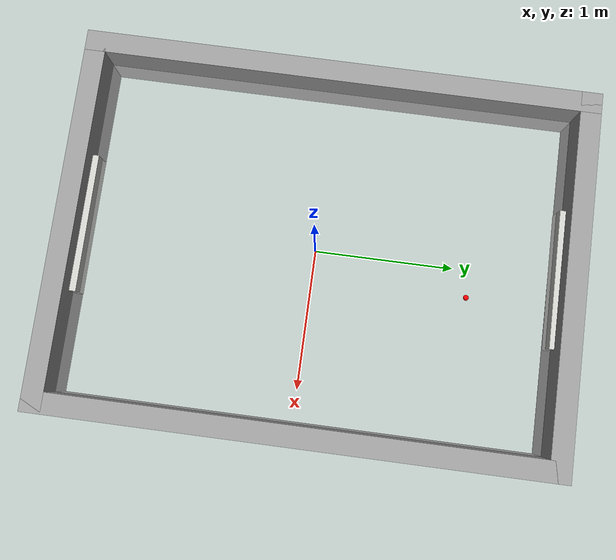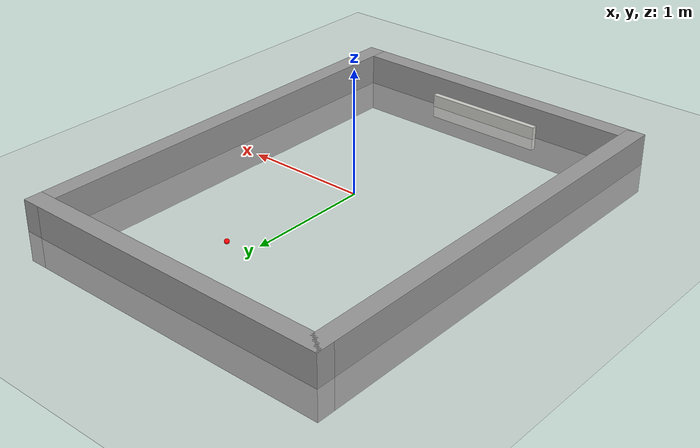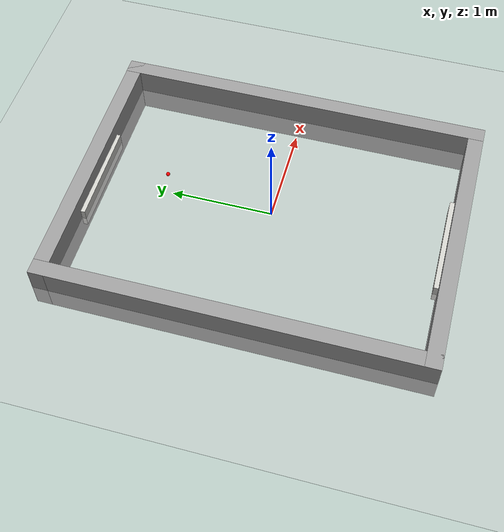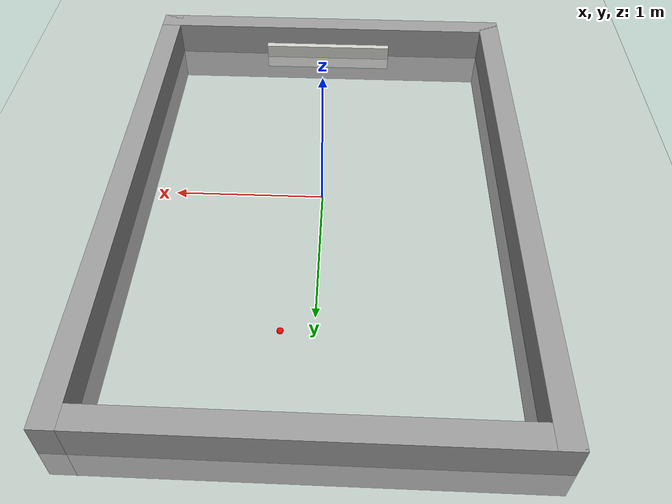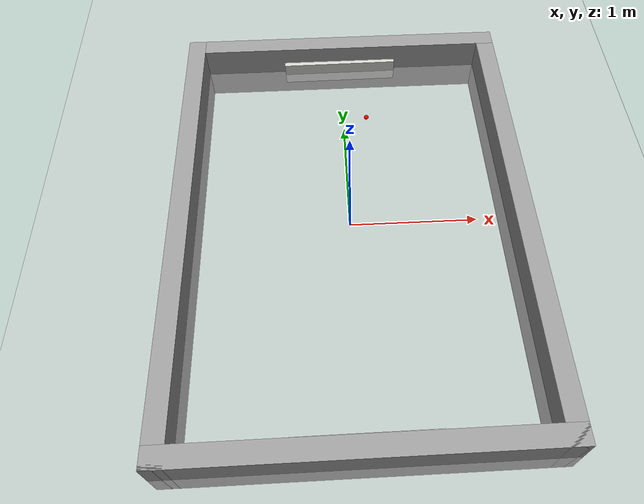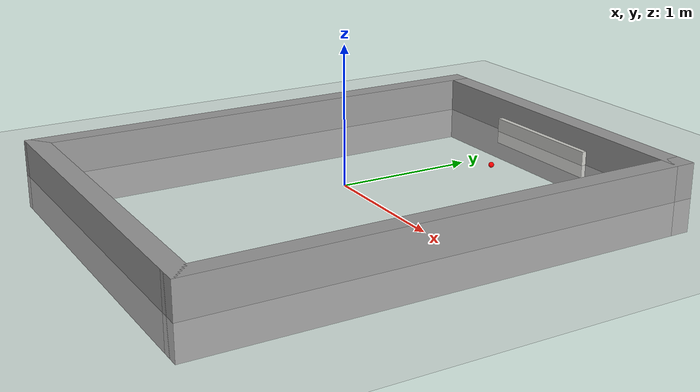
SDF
<sdf version="1.6">
 <world name="default">
  <light name="sun" type="directional">
   <pose>0 0 10 0 -0 0</pose>
   <diffuse>0.8 0.8 0.8 1</diffuse>
   <specular>0.2 0.2 0.2 1</specular>
   <attenuation>
    <range>1000</range>
    <constant>0.9</constant>
    <linear>0.01</linear>
    <quadratic>0.001</quadratic>
   </attenuation>
   <direction>-0.5 0.1 -0.9</direction>
  </light>
  <model name="ground_plane">
   <static>1</static>
   <link name="link">
    <collision name="collision">
     <geometry><plane><normal>0 0 1</normal><size>100 100</size></plane></geometry>
     <surface><friction><ode><mu>100</mu><mu2>50</mu2></ode></friction></surface>
    </collision>
    <visual name="visual">
     <cast_shadows>0</cast_shadows>
     <geometry><plane><normal>0 0 1</normal><size>100 100</size></plane></geometry>
     <material>
      <script><uri>file://media/materials/scripts/gazebo.material</uri><name>Gazebo/Grey</name></script>
     </material>
    </visual>
   </link>
  </model>
  <gravity>0 0 -9.8</gravity>
  <magnetic_field>6e-06 2.3e-05 -4.2e-05</magnetic_field>
  <atmosphere type="adiabatic"/>
  <physics name="default_physics" default="0" type="ode">
   <max_step_size>0.001</max_step_size>
   <real_time_factor>1</real_time_factor>
   <real_time_update_rate>1000</real_time_update_rate>
  </physics>
  <scene><ambient>0.4 0.4 0.4 1</ambient><background>0.7 0.7 0.7 1</background><shadows>1</shadows></scene>
  <spherical_coordinates>
   <surface_model>EARTH_WGS84</surface_model>
   <latitude_deg>0</latitude_deg>
   <longitude_deg>0</longitude_deg>
   <elevation>0</elevation>
   <heading_deg>0</heading_deg>
  </spherical_coordinates>
  <model name="arena_black">
   <link name="Wall_4">
    <pose>-1.3 0 0 0 0 -1.5708</pose>
    <inertial>
     <mass>1</mass>
     <inertia><ixx>1</ixx><ixy>0</ixy><ixz>0</ixz><iyy>1</iyy><iyz>0</iyz><izz>1</izz></inertia>
    </inertial>
    <visual name="Wall_4_Visual">
     <geometry><box><size>3.75 0.15 0.5</size></box></geometry>
     <material>
      <script><uri>file://media/materials/scripts/gazebo.material</uri><name>Gazebo/Grey</name></script>
      <ambient>0 0 0 1</ambient>
      <shader type="pixel"><normal_map>__default__</normal_map></shader>
      <diffuse>0.7 0.7 0.7 1</diffuse>
      <specular>0.01 0.01 0.01 1</specular>
      <emissive>0 0 0 1</emissive>
     </material>
     <meta><layer>0</layer></meta>
    </visual>
    <collision name="Wall_4_Collision">
     <geometry><box><size>3.75 0.15 0.5</size></box></geometry>
     <surface>
      <friction>
       <ode><mu>1</mu><mu2>1</mu2><fdir1>0 0 0</fdir1><slip1>0</slip1><slip2>0</slip2></ode>
       <torsional>
        <coefficient>1</coefficient>
        <patch_radius>0</patch_radius>
        <surface_radius>0</surface_radius>
        <use_patch_radius>1</use_patch_radius>
        <ode><slip>0</slip></ode>
       </torsional>
      </friction>
      <bounce><restitution_coefficient>0</restitution_coefficient><threshold>1e+06</threshold></bounce>
      <contact>
       <collide_without_contact>0</collide_without_contact>
       <collide_without_contact_bitmask>1</collide_without_contact_bitmask>
       <collide_bitmask>1</collide_bitmask>
       <ode>
        <soft_cfm>0</soft_cfm>
        <soft_erp>0.2</soft_erp>
        <kp>1e+13</kp>
        <kd>1</kd>
        <max_vel>0.01</max_vel>
        <min_depth>0</min_depth>
       </ode>
       <bullet>
        <split_impulse>1</split_impulse>
        <split_impulse_penetration_threshold>-0.01</split_impulse_penetration_threshold>
        <soft_cfm>0</soft_cfm>
        <soft_erp>0.2</soft_erp>
        <kp>1e+13</kp>
        <kd>1</kd>
       </bullet>
      </contact>
     </surface>
    </collision>
   </link>
   <link name="Wall_5">
    <pose>0 -1.8 0 0 -0 0</pose>
    <inertial>
     <mass>1</mass>
     <inertia><ixx>1</ixx><ixy>0</ixy><ixz>0</ixz><iyy>1</iyy><iyz>0</iyz><izz>1</izz></inertia>
    </inertial>
    <visual name="Wall_5_Visual">
     <geometry><box><size>2.75 0.15 0.5</size></box></geometry>
     <material>
      <script><uri>file://media/materials/scripts/gazebo.material</uri><name>Gazebo/Grey</name></script>
      <ambient>0 0 0 1</ambient>
      <shader type="pixel"><normal_map>__default__</normal_map></shader>
      <diffuse>0.7 0.7 0.7 1</diffuse>
      <specular>0.01 0.01 0.01 1</specular>
      <emissive>0 0 0 1</emissive>
     </material>
     <meta><layer>0</layer></meta>
    </visual>
    <collision name="Wall_5_Collision">
     <geometry><box><size>2.75 0.15 0.5</size></box></geometry>
     <surface>
      <friction>
       <ode><mu>1</mu><mu2>1</mu2><fdir1>0 0 0</fdir1><slip1>0</slip1><slip2>0</slip2></ode>
       <torsional>
        <coefficient>1</coefficient>
        <patch_radius>0</patch_radius>
        <surface_radius>0</surface_radius>
        <use_patch_radius>1</use_patch_radius>
        <ode><slip>0</slip></ode>
       </torsional>
      </friction>
      <bounce><restitution_coefficient>0</restitution_coefficient><threshold>1e+06</threshold></bounce>
      <contact>
       <collide_without_contact>0</collide_without_contact>
       <collide_without_contact_bitmask>1</collide_without_contact_bitmask>
       <collide_bitmask>1</collide_bitmask>
       <ode>
        <soft_cfm>0</soft_cfm>
        <soft_erp>0.2</soft_erp>
        <kp>1e+13</kp>
        <kd>1</kd>
        <max_vel>0.01</max_vel>
        <min_depth>0</min_depth>
       </ode>
       <bullet>
        <split_impulse>1</split_impulse>
        <split_impulse_penetration_threshold>-0.01</split_impulse_penetration_threshold>
        <soft_cfm>0</soft_cfm>
        <soft_erp>0.2</soft_erp>
        <kp>1e+13</kp>
        <kd>1</kd>
       </bullet>
      </contact>
     </surface>
    </collision>
   </link>
   <link name="Wall_6">
    <pose>1.3 0 0 0 -0 1.5708</pose>
    <inertial>
     <mass>1</mass>
     <inertia><ixx>1</ixx><ixy>0</ixy><ixz>0</ixz><iyy>1</iyy><iyz>0</iyz><izz>1</izz></inertia>
    </inertial>
    <visual name="Wall_6_Visual">
     <geometry><box><size>3.75 0.15 0.5</size></box></geometry>
     <material>
      <script><uri>file://media/materials/scripts/gazebo.material</uri><name>Gazebo/Grey</name></script>
      <ambient>0 0 0 1</ambient>
      <shader type="pixel"><normal_map>__default__</normal_map></shader>
      <diffuse>0.7 0.7 0.7 1</diffuse>
      <specular>0.01 0.01 0.01 1</specular>
      <emissive>0 0 0 1</emissive>
     </material>
     <meta><layer>0</layer></meta>
    </visual>
    <collision name="Wall_6_Collision">
     <geometry><box><size>3.75 0.15 0.5</size></box></geometry>
     <surface>
      <friction>
       <ode><mu>1</mu><mu2>1</mu2><fdir1>0 0 0</fdir1><slip1>0</slip1><slip2>0</slip2></ode>
       <torsional>
        <coefficient>1</coefficient>
        <patch_radius>0</patch_radius>
        <surface_radius>0</surface_radius>
        <use_patch_radius>1</use_patch_radius>
        <ode><slip>0</slip></ode>
       </torsional>
      </friction>
      <bounce><restitution_coefficient>0</restitution_coefficient><threshold>1e+06</threshold></bounce>
      <contact>
       <collide_without_contact>0</collide_without_contact>
       <collide_without_contact_bitmask>1</collide_without_contact_bitmask>
       <collide_bitmask>1</collide_bitmask>
       <ode>
        <soft_cfm>0</soft_cfm>
        <soft_erp>0.2</soft_erp>
        <kp>1e+13</kp>
        <kd>1</kd>
        <max_vel>0.01</max_vel>
        <min_depth>0</min_depth>
       </ode>
       <bullet>
        <split_impulse>1</split_impulse>
        <split_impulse_penetration_threshold>-0.01</split_impulse_penetration_threshold>
        <soft_cfm>0</soft_cfm>
        <soft_erp>0.2</soft_erp>
        <kp>1e+13</kp>
        <kd>1</kd>
       </bullet>
      </contact>
     </surface>
    </collision>
   </link>
   <link name="Wall_7">
    <pose>0 1.8 0 0 -0 3.14159</pose>
    <inertial>
     <mass>1</mass>
     <inertia><ixx>1</ixx><ixy>0</ixy><ixz>0</ixz><iyy>1</iyy><iyz>0</iyz><izz>1</izz></inertia>
    </inertial>
    <visual name="Wall_7_Visual">
     <geometry><box><size>2.75 0.15 0.5</size></box></geometry>
     <material>
      <script><uri>file://media/materials/scripts/gazebo.material</uri><name>Gazebo/Grey</name></script>
      <ambient>0 0 0 1</ambient>
      <shader type="pixel"><normal_map>__default__</normal_map></shader>
      <diffuse>0.7 0.7 0.7 1</diffuse>
      <specular>0.01 0.01 0.01 1</specular>
      <emissive>0 0 0 1</emissive>
     </material>
     <meta><layer>0</layer></meta>
    </visual>
    <collision name="Wall_7_Collision">
     <geometry><box><size>2.75 0.15 0.5</size></box></geometry>
     <surface>
      <friction>
       <ode><mu>1</mu><mu2>1</mu2><fdir1>0 0 0</fdir1><slip1>0</slip1><slip2>0</slip2></ode>
       <torsional>
        <coefficient>1</coefficient>
        <patch_radius>0</patch_radius>
        <surface_radius>0</surface_radius>
        <use_patch_radius>1</use_patch_radius>
        <ode><slip>0</slip></ode>
       </torsional>
      </friction>
      <bounce><restitution_coefficient>0</restitution_coefficient><threshold>1e+06</threshold></bounce>
      <contact>
       <collide_without_contact>0</collide_without_contact>
       <collide_without_contact_bitmask>1</collide_without_contact_bitmask>
       <collide_bitmask>1</collide_bitmask>
       <ode>
        <soft_cfm>0</soft_cfm>
        <soft_erp>0.2</soft_erp>
        <kp>1e+13</kp>
        <kd>1</kd>
        <max_vel>0.01</max_vel>
        <min_depth>0</min_depth>
       </ode>
       <bullet>
        <split_impulse>1</split_impulse>
        <split_impulse_penetration_threshold>-0.01</split_impulse_penetration_threshold>
        <soft_cfm>0</soft_cfm>
        <soft_erp>0.2</soft_erp>
        <kp>1e+13</kp>
        <kd>1</kd>
       </bullet>
      </contact>
     </surface>
    </collision>
   </link>
   <static>1</static>
   <pose>0.01305 0.030733 0 0 -0 0</pose>
  </model>
  <model name="net">
   <link name="Wall_13">
    <pose>-1.19776 -0.499998 0 0 0 -1.5708</pose>
    <inertial>
     <mass>1</mass>
     <inertia><ixx>1</ixx><ixy>0</ixy><ixz>0</ixz><iyy>1</iyy><iyz>0</iyz><izz>1</izz></inertia>
    </inertial>
    <visual name="Wall_13_Visual">
     <geometry><box><size>1 0.15 0.2</size></box></geometry>
     <material>
      <script><uri>file://media/materials/scripts/gazebo.material</uri><name>Gazebo/CeilingTiled</name></script>
      <ambient>1 1 1 1</ambient>
      <shader type="pixel"><normal_map>__default__</normal_map></shader>
      <diffuse>1 1 1 1</diffuse>
      <specular>0 0 0 1</specular>
      <emissive>0 0 0 1</emissive>
     </material>
     <meta><layer>0</layer></meta>
    </visual>
    <collision name="Wall_13_Collision">
     <pose>0 0 1.25 0 -0 0</pose>
     <geometry><box><size>1 0.15 2.5</size></box></geometry>
     <surface>
      <friction>
       <ode><mu>1</mu><mu2>1</mu2><fdir1>0 0 0</fdir1><slip1>0</slip1><slip2>0</slip2></ode>
       <torsional>
        <coefficient>1</coefficient>
        <patch_radius>0</patch_radius>
        <surface_radius>0</surface_radius>
        <use_patch_radius>1</use_patch_radius>
        <ode><slip>0</slip></ode>
       </torsional>
      </friction>
      <bounce><restitution_coefficient>0</restitution_coefficient><threshold>1e+06</threshold></bounce>
      <contact>
       <collide_without_contact>0</collide_without_contact>
       <collide_without_contact_bitmask>1</collide_without_contact_bitmask>
       <collide_bitmask>1</collide_bitmask>
       <ode>
        <soft_cfm>0</soft_cfm>
        <soft_erp>0.2</soft_erp>
        <kp>1e+13</kp>
        <kd>1</kd>
        <max_vel>0.01</max_vel>
        <min_depth>0</min_depth>
       </ode>
       <bullet>
        <split_impulse>1</split_impulse>
        <split_impulse_penetration_threshold>-0.01</split_impulse_penetration_threshold>
        <soft_cfm>0</soft_cfm>
        <soft_erp>0.2</soft_erp>
        <kp>1e+13</kp>
        <kd>1</kd>
       </bullet>
      </contact>
     </surface>
    </collision>
   </link>
   <static>1</static>
   <pose>0.500116 0.597924 0 0 0 -1.56357</pose>
  </model>
  <model name="net_clone">
   <link name="Wall_13">
    <pose>-1.1825 -0.5 0 0 0 -1.5708</pose>
    <inertial>
     <mass>1</mass>
     <inertia><ixx>1</ixx><ixy>0</ixy><ixz>0</ixz><iyy>1</iyy><iyz>0</iyz><izz>1</izz></inertia>
    </inertial>
    <visual name="Wall_13_Visual">
     <geometry><box><size>1 0.15 0.2</size></box></geometry>
     <material>
      <script><uri>file://media/materials/scripts/gazebo.material</uri><name>Gazebo/CeilingTiled</name></script>
      <ambient>1 1 1 1</ambient>
      <shader type="pixel"><normal_map>__default__</normal_map></shader>
      <diffuse>1 1 1 1</diffuse>
      <specular>0 0 0 1</specular>
      <emissive>0 0 0 1</emissive>
     </material>
     <meta><layer>0</layer></meta>
    </visual>
    <collision name="Wall_13_Collision">
     <pose>0 0 1.25 0 -0 0</pose>
     <geometry><box><size>1 0.15 2.5</size></box></geometry>
     <surface>
      <friction>
       <ode><mu>1</mu><mu2>1</mu2><fdir1>0 0 0</fdir1><slip1>0</slip1><slip2>0</slip2></ode>
       <torsional>
        <coefficient>1</coefficient>
        <patch_radius>0</patch_radius>
        <surface_radius>0</surface_radius>
        <use_patch_radius>1</use_patch_radius>
        <ode><slip>0</slip></ode>
       </torsional>
      </friction>
      <bounce><restitution_coefficient>0</restitution_coefficient><threshold>1e+06</threshold></bounce>
      <contact>
       <collide_without_contact>0</collide_without_contact>
       <collide_without_contact_bitmask>1</collide_without_contact_bitmask>
       <collide_bitmask>1</collide_bitmask>
       <ode>
        <soft_cfm>0</soft_cfm>
        <soft_erp>0.2</soft_erp>
        <kp>1e+13</kp>
        <kd>1</kd>
        <max_vel>0.01</max_vel>
        <min_depth>0</min_depth>
       </ode>
       <bullet>
        <split_impulse>1</split_impulse>
        <split_impulse_penetration_threshold>-0.01</split_impulse_penetration_threshold>
        <soft_cfm>0</soft_cfm>
        <soft_erp>0.2</soft_erp>
        <kp>1e+13</kp>
        <kd>1</kd>
       </bullet>
      </contact>
     </surface>
    </collision>
   </link>
   <static>1</static>
   <pose>-0.480622 -0.542456 0 0 -0 1.57364</pose>
  </model>
  <model name="ball">
   <link name="link">
    <pose>0 1 0.284585 0 -0 0</pose>
    <inertial>
     <mass>0.05</mass>
     <inertia><ixx>0.1</ixx><ixy>0</ixy><ixz>0</ixz><iyy>0.1</iyy><iyz>0</iyz><izz>0.1</izz></inertia>
    </inertial>
    <visual name="visual">
     <geometry><sphere><radius>0.02</radius></sphere></geometry>
     <material>
      <script><name>Gazebo/Grey</name><uri>file://media/materials/scripts/gazebo.material</uri></script>
      <ambient>0.3 0.3 0.3 1</ambient>
      <diffuse>1 0 0 1</diffuse>
      <specular>0.01 0.01 0.01 1</specular>
      <emissive>0 0 0 1</emissive>
      <shader type="vertex"><normal_map>__default__</normal_map></shader>
     </material>
    </visual>
    <collision name="collision">
     <geometry><sphere><radius>0.02</radius></sphere></geometry>
     <surface>
      <friction>
       <ode><mu>1</mu><mu2>1</mu2><fdir1>0 0 0</fdir1><slip1>0</slip1><slip2>0</slip2></ode>
       <torsional>
        <coefficient>1</coefficient>
        <patch_radius>0</patch_radius>
        <surface_radius>0</surface_radius>
        <use_patch_radius>1</use_patch_radius>
        <ode><slip>0</slip></ode>
       </torsional>
      </friction>
      <bounce><restitution_coefficient>0.5</restitution_coefficient><threshold>0.001</threshold></bounce>
      <contact>
       <collide_without_contact>0</collide_without_contact>
       <collide_without_contact_bitmask>1</collide_without_contact_bitmask>
       <collide_bitmask>1</collide_bitmask>
       <ode>
        <soft_cfm>0</soft_cfm>
        <soft_erp>0.2</soft_erp>
        <kp>1e+13</kp>
        <kd>1</kd>
        <max_vel>10</max_vel>
        <min_depth>0</min_depth>
       </ode>
       <bullet>
        <split_impulse>1</split_impulse>
        <split_impulse_penetration_threshold>-0.01</split_impulse_penetration_threshold>
        <soft_cfm>0</soft_cfm>
        <soft_erp>0.2</soft_erp>
        <kp>1e+13</kp>
        <kd>1</kd>
       </bullet>
      </contact>
     </surface>
    </collision>
   </link>
   <static>0</static>
   <pose>0.199292 0.116704 -0.264585 0 -0 0</pose>
  </model>
 </world>
</sdf>
